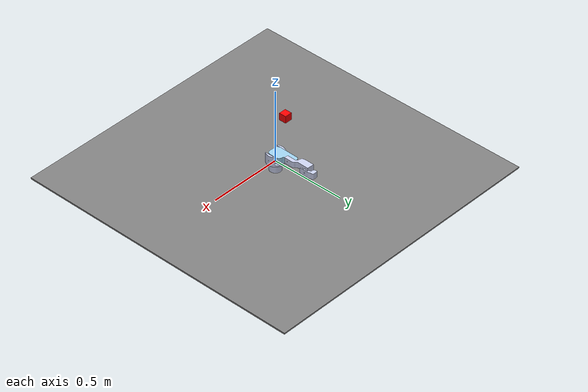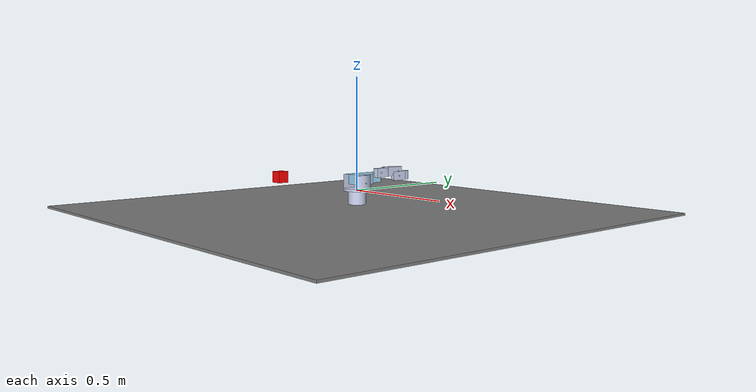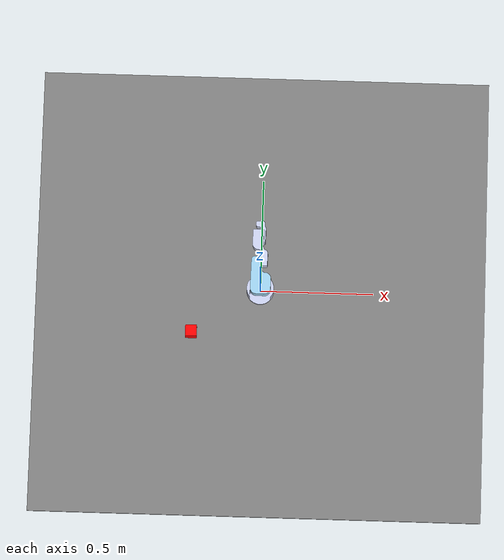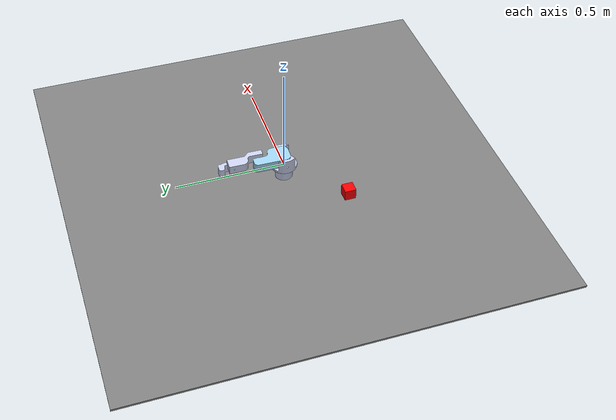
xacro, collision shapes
<?xml version="1.0" encoding="utf-8"?>
<!-- URDF creado por SolidWorks to URDF Exporter,
     ajustado para intentar que el robot quede vertical en el origen. -->

<robot xmlns:xacro="http://www.ros.org/wiki/xacro" name="rapling">
   <!-- Load Simulated or Real Hardware Interfaces -->
    <xacro:arg name="is_sim" default="False"/>

    <!-- Include ros2_control Plugins -->
    <xacro:include filename="$(find rapling_description)/urdf/rapling_ros2_control.xacro" />

  <!-- Enlace virtual "world" para anclar el robot al origen -->
  <link name="world"/>

  <!-- Joint fijo: rotamos 90° en X y no desplazamos (xyz="0 0 0").
       Si sigue de lado, prueba otras combinaciones (ver explicación arriba). -->
  <joint name="virtual_joint" type="fixed">
    <parent link="world"/>
    <child link="base_link"/>
    <!-- Ajusta rpy y xyz según tu STL -->
    <origin rpy="0 0 0" xyz="0 0 0"/>
  </joint>

  <!-- ===================== base_link ===================== -->
  <link
    name="base_link">

    <visual>
      <origin
        xyz="0 0 0"
        rpy="0 0 0" />
      <geometry>
        <mesh
          filename="package://rapling_description/meshes/base_link.STL" />
      </geometry>
      <material
        name="">
        <color
          rgba="0.792156862745098 0.819607843137255 0.933333333333333 1" />
      </material>
    </visual>
    <collision>
      <origin
        xyz="0 0 0"
        rpy="0 0 0" />
      <geometry>
        <mesh
          filename="package://rapling_description/meshes/base_link.STL" />
      </geometry>
    </collision>
  </link>
<!-- Enlace "mesa" para limitar el movimiento -->
<link name="table">
  <visual>
    <origin xyz="0 0 0" rpy="0 0 0" />
    <geometry>
      <box size="2 2 0.01"/> <!-- Tamaño de la mesa (2x2 metros, grosor 0.01) -->
    </geometry>
    <material name="table_color">
      <color rgba="0.5 0.5 0.5 1"/> <!-- Color gris -->
    </material>
  </visual>
  <collision>
    <origin xyz="0 0 0" rpy="0 0 0" />
    <geometry>
      <box size="2 2 0.01"/>
    </geometry>
  </collision>
</link>

<!-- Joint fijo para conectar la mesa al mundo -->
<joint name="table_joint" type="fixed">
  <parent link="world"/>
  <child link="table"/>
  <origin xyz="0 0 -0.09" rpy="0 0 0"/> <!-- Posición de la mesa (en el origen) -->
</joint>

  <link
    name="Link1">

    <visual>
      <origin
        xyz="0 0 0"
        rpy="0 0 0" />
      <geometry>
        <mesh
          filename="package://rapling_description/meshes/Link1.STL" />
      </geometry>
      <material
        name="">
        <color
          rgba="0.79216 0.81961 0.93333 1" />
      </material>
    </visual>
    <collision>
      <origin
        xyz="0 0 0"
        rpy="0 0 0" />
      <geometry>
        <mesh
          filename="package://rapling_description/meshes/Link1.STL" />
      </geometry>
    </collision>
  </link>

<!-- Link que representa la punta del robot -->
<link name="rapling_tip">
  <visual>
    <origin xyz="0 0 0" rpy="0 0 0"/>
    <geometry>
      <box size="0.008 0.008 0.008"/>
    </geometry>
    <material name="tip_color">
      <color rgba="1 0 0 1"/>
    </material>
  </visual>
  <collision>
    <origin xyz="0 0 0" rpy="0 0 0"/>
    <geometry>
      <box size="0.005 0.005 0.005"/>
    </geometry>
  </collision>
</link>

  <joint
    name="joint_link_1"
    type="revolute">
    <origin
      xyz="0 0 0"
      rpy="0 0 0" />
    <parent
      link="base_link" />
    <child
      link="Link1" />
    <axis
      xyz="0 0 1" />
    <limit
      lower="-1.57"
      upper="1.57"
      effort="0"
      velocity="0" />
  </joint>

  <link
    name="Link_2">

    <visual>
      <origin
        xyz="0 0 0"
        rpy="0 0 0" />
      <geometry>
        <mesh
          filename="package://rapling_description/meshes/Link_2.STL" />
      </geometry>
      <material
        name="">
        <color
          rgba="0.6216 0.81961 0.93333 1" />
      </material>
    </visual>
    <collision>
      <origin
        xyz="0 0 0"
        rpy="0 0 0" />
      <geometry>
        <mesh
          filename="package://rapling_description/meshes/Link_2.STL" />
      </geometry>
    </collision>
  </link>

  <joint
    name="joint_link_2"
    type="revolute">
    <origin
      xyz="0 0 0.05"
      rpy="1.5476 0.0  1.5478" />
    <parent
      link="Link1" />
    <child
      link="Link_2" />
    <axis
      xyz="0.0 0.0 1" />
    <limit
      lower="3.14"
      upper="0.0"
      effort="0"
      velocity="0" />
  </joint>

  <link
    name="Link_3">
    <visual>
      <origin
        xyz="0 -0.025 0"
        rpy="0 0 0" />
      <geometry>
        <mesh
          filename="package://rapling_description/meshes/Link_3.STL" />
      </geometry>
      <material
        name="">
        <color
          rgba="0.79216 0.81961 0.93333 1" />
      </material>
    </visual>
    <collision>
      <origin
        xyz="0 0 0"
        rpy="0 0 0" />
      <geometry>
        <mesh
          filename="package://rapling_description/meshes/Link_3.STL" />
      </geometry>
    </collision>
  </link>
  <joint
    name="joint_link_3"
    type="revolute">
    <origin
      xyz="0.12 0.0 0.0 "
      rpy="0.0 0.0 0.0" />
    <parent
      link="Link_2" />
    <child
      link="Link_3" />
    <axis
      xyz="0.0 0.0 1" />
    <limit
      lower="-1.57"
      upper="1.57"
      effort="0"
      velocity="0" />
  </joint>
  <link
    name="Link_4">

    <visual>
      <origin
        xyz="0 0 0"
        rpy="0 0 0" />
      <geometry>
        <mesh
          filename="package://rapling_description/meshes/Link_4.STL" />
      </geometry>
      <material
        name="">
        <color
          rgba="0.79216 0.81961 0.93333 1" />
      </material>
    </visual>
    <collision>
      <origin
        xyz="0 0 0"
        rpy="0 0 0" />
      <geometry>
        <mesh
          filename="package://rapling_description/meshes/Link_4.STL" />
      </geometry>
    </collision>
  </link>

  <joint
    name="joint_link_4"
    type="revolute">
    <origin
      xyz="0.12052 0.0 0.0"
      rpy="0 0.0 0.0" />
    <parent
      link="Link_3" />
    <child
      link="Link_4" />
    <axis
      xyz="0 0 1" />
    <limit
      lower="-1.57"
      upper="1.57"
      effort="0"
      velocity="0" />
  </joint>
  <!-- Joint fijo que une Link_4 con rapling_tip -->
  <joint name="rapling_tip_joint" type="fixed">
    <parent link="Link_4"/>
    <child link="rapling_tip"/>
    <origin xyz="0.06 0 -0.01 " rpy="0 0 0"/>
  </joint>

    <joint name="world_to_camera" type="fixed">
        <parent link="base_link" />
        <child link="camera" />
        <origin  rpy="0 6.28 0" xyz="-0.21 0.0 0.475" />
    </joint>

    <link name="camera">
        <visual>
            <origin xyz="0 0 0"/>
        <geometry>
           <mesh
          filename="package://rapling_description/meshes/pi_camera.STL" scale="0.001 0.001 0.001" />
        </geometry>

        </visual>
    </link>

<link name="obstacle_1">
  <visual>
    <origin xyz="-0.3 -0.2 -0.05" rpy="0 0 0"/>
    <geometry>
      <box size="0.1 0.1 0.1"/> <!-- Cubo de 10 cm -->
    </geometry>
    <material name="red">
      <color rgba="1 0 0 1"/> <!-- Color rojo -->
    </material>
  </visual>
  <collision>
    <origin xyz="-0.3 -0.2 0.05" rpy="0 0 0"/>
    <geometry>
      <box size="0.05 0.05 0.05"/>
    </geometry>
  </collision>
</link>

<joint name="obstacle_1_joint" type="fixed">
  <parent link="world"/>
  <child link="obstacle_1"/>
  <origin xyz="0 0 0" rpy="0 0 0"/>
</joint>

</robot>
